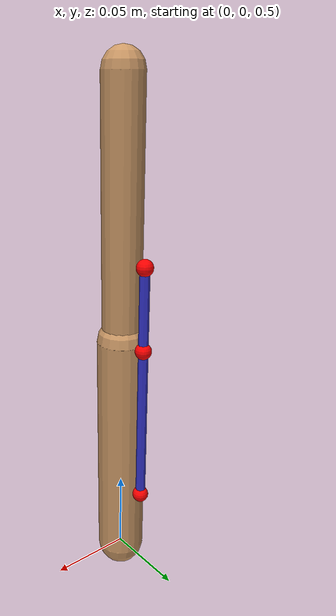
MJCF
<mujoco model="tendon_finger">
  <compiler angle="radian" autolimits="true"/>

  <default>
    <geom type="capsule" size="0.01" rgba="0.8 0.6 0.4 1"/>
    <joint type="hinge" axis="0 1 0" range="-1.57 1.57" damping="0.1"/>
    <site size="0.005" rgba="1 0 0 1"/>
  </default>

  <worldbody>
    <light pos="0 0 1" dir="0 0 -1" diffuse="0.8 0.8 0.8"/>
    <geom type="plane" size="1 1 0.1" rgba="0.9 0.9 0.9 1"/>

    <body name="proximal_link" pos="0 0 0.5">
      <joint name="proximal_joint"/>
      <geom fromto="0 0 0 0 0 0.15" size="0.015"/>
      <site name="tendon_p1" pos="0 0.02 0.05"/>
      <site name="tendon_p2" pos="0 0.02 0.15"/>

      <body name="distal_link" pos="0 0 0.15">
        <joint name="distal_joint"/>
        <geom fromto="0 0 0 0 0 0.15" size="0.012"/>
        <site name="tendon_p3" pos="0 0.02 0.05"/>
        <site name="fingertip" pos="0 0 0.15"/>
      </body>
    </body>
  </worldbody>

  <tendon>
    <spatial name="finger_tendon" width="0.003" rgba="0.2 0.2 0.8 1">
      <site site="tendon_p1"/>
      <site site="tendon_p2"/>
      <site site="tendon_p3"/>
    </spatial>
  </tendon>

  <actuator>
    <!-- Tendon actuators for testing different control modes -->
    <position name="tendon_position" tendon="finger_tendon" kp="100" ctrlrange="-0.1 0.1"/>
    <velocity name="tendon_velocity" tendon="finger_tendon" kv="10" ctrlrange="-1 1"/>
    <motor name="tendon_effort" tendon="finger_tendon" ctrlrange="-10 10"/>
  </actuator>
</mujoco>
